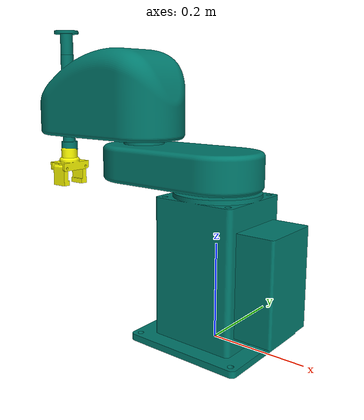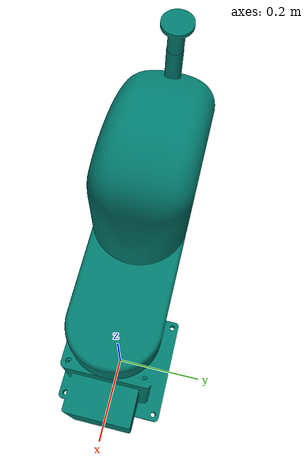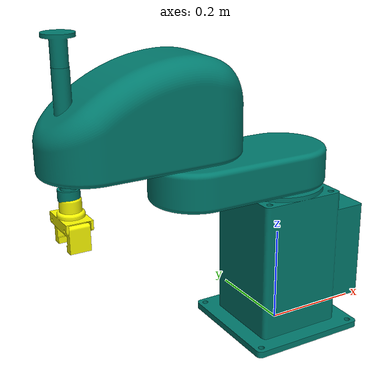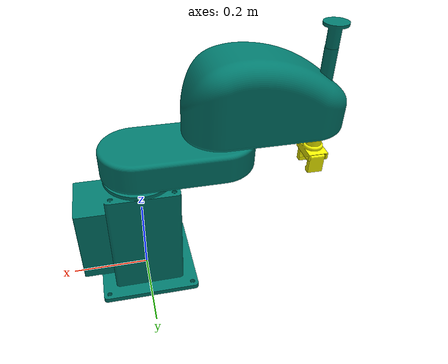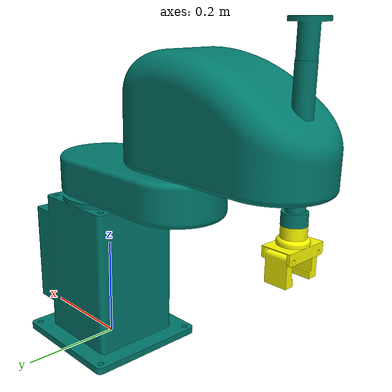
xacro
<?xml version="1.0"?>
<robot xmlns:xacro="http://www.ros.org/wiki/xacro" name="scara">

  <!-- Propriedades e Plugins do Gazebo (Prática IV) -->
  <xacro:arg name="is_sim" default="true"/>
  <xacro:include filename="$(find scara_description)/urdf/scara_gazebo.xacro" />

  <!-- Controles Ativados: -->
  <xacro:include filename="$(find scara_description)/urdf/scara_ros2_control.xacro" />

  <!-- Materiais de Cor -->
  <material name="teal">
    <color rgba="0.0 0.48 0.43 1"/>
  </material>
  <material name="white">
    <color rgba="1 1 1 1"/>
  </material>
  <material name="yellow">
    <color rgba="1 1 0 1"/>
  </material>

  <!-- Variáveis XACRO -->
  <xacro:property name="PI" value="3.14159265359" />
  <xacro:property name="effort" value="30.0" />
  <xacro:property name="velocity" value="1.0" />

  <!-- Macros de Inércia e Transmissão -->
  <xacro:macro name="default_inertial" params="mass">
    <inertial>
      <origin xyz="0 0 0" rpy="0 0 0"/>
      <mass value="${mass}" />
      <inertia ixx="1.0" ixy="0.0" ixz="0.0"
               iyy="1.0" iyz="0.0"
               izz="1.0" />
    </inertial>
  </xacro:macro>

  <xacro:macro name="default_transmission" params="number">
    <transmission name="transmission_${number}">
      <plugin>transmission_interface/SimpleTransmission</plugin>
      <actuator name="motor_${number}" role="actuator1"/>
      <joint name="joint_${number}" role="joint1">
        <mechanical_reduction>1.0</mechanical_reduction>
      </joint>
    </transmission>
  </xacro:macro>

  <link name="world"/>

  <!-- 1. BASE (bs.stl) -->
  <link name="base_link">
    <xacro:default_inertial mass="2.0"/>
    <visual>
      <origin rpy="0 0 0" xyz="0 0 0"/>
      <geometry>
        <mesh filename="package://scara_description/meshes/bs.stl" scale="0.001 0.001 0.001"/>
      </geometry>
      <material name="teal"/>
    </visual>
    <collision>
      <origin rpy="0 0 0" xyz="0 0 0"/>
      <geometry>
        <mesh filename="package://scara_description/meshes/bs.stl" scale="0.001 0.001 0.001"/>
      </geometry>
    </collision>
  </link>

  <joint name="virtual_joint" type="fixed">
    <parent link="world"/>
    <child link="base_link"/>
    <!-- MUDE O VALOR ABAIXO: O "0.1" é o eixo Z.
         Aumente (ex: 0.15) se continuar afundado, ou diminua (ex: 0.05) se flutuar. -->
    <origin xyz="0 0 0.15" rpy="0 0 0"/>
  </joint>

  <!-- 2. ELO 1 (es.stl) -->
  <link name="link_1">
    <xacro:default_inertial mass="0.5"/>
    <visual>
      <origin rpy="0 0 0" xyz="-0.097972 0.002395 -0.026000"/>
      <geometry>
        <mesh filename="package://scara_description/meshes/es.stl" scale="0.001 0.001 0.001"/>
      </geometry>
      <material name="teal"/>
    </visual>
    <collision>
      <origin rpy="0 0 0" xyz="-0.097972 0.002395 -0.026000"/>
      <geometry>
        <mesh filename="package://scara_description/meshes/es.stl" scale="0.001 0.001 0.001"/>
      </geometry>
    </collision>
  </link>

  <joint name="joint_1" type="revolute">
    <parent link="base_link"/>
    <child link="link_1"/>
    <origin xyz="0.000972 -0.002395 0.189000" rpy="0 0 0"/>
    <axis xyz="0 0 1"/>
    <limit lower="-3.14" upper="3.14" effort="10.0" velocity="1.0"/>
  </joint>

  <!-- 3. ELO 2 (as.stl) -->
  <link name="link_2">
    <xacro:default_inertial mass="0.5"/>
    <visual>
      <origin rpy="0 0 0" xyz="-0.105150 -0.004515 0.080000"/>
      <geometry>
        <mesh filename="package://scara_description/meshes/as.stl" scale="0.001 0.001 0.001"/>
      </geometry>
      <material name="teal"/>
    </visual>
    <collision>
      <origin rpy="0 0 0" xyz="-0.105150 -0.004515 0.080000"/>
      <geometry>
        <mesh filename="package://scara_description/meshes/as.stl" scale="0.001 0.001 0.001"/>
      </geometry>
    </collision>
  </link>

  <joint name="joint_2" type="revolute">
    <parent link="link_1"/>
    <child link="link_2"/>
    <origin xyz="-0.198822 0.006910 0.022000" rpy="0 0 0"/>
    <axis xyz="0 0 1"/>
    <limit lower="-2.268" upper="2.268" effort="10.0" velocity="1.0"/>
  </joint>

  <!-- 4. HASTE VERTICAL (cs.stl) -->
  <link name="link_z">
    <xacro:default_inertial mass="0.15"/>
    <visual>
      <origin rpy="0 0 0" xyz="-0.000266 0.002599 -0.157000"/>
      <geometry>
        <mesh filename="package://scara_description/meshes/cs.stl" scale="0.001 0.001 0.001"/>
      </geometry>
      <material name="teal"/>
    </visual>
    <collision>
      <origin rpy="0 0 0" xyz="-0.000266 0.002599 -0.157000"/>
      <geometry>
        <mesh filename="package://scara_description/meshes/cs.stl" scale="0.001 0.001 0.001"/>
      </geometry>
    </collision>
  </link>

  <joint name="joint_z" type="prismatic">
    <parent link="link_2"/>
    <child link="link_z"/>
    <origin xyz="-0.248884 -0.007114 0.286000" rpy="0 0 0"/>
    <axis xyz="0 0 1"/>
    <limit lower="-0.1" upper="0.0" effort="15.0" velocity="0.5"/>
  </joint>

  <!-- 5. BASE DA GARRA (g1.stl) -->
  <link name="gripper_base">
    <xacro:default_inertial mass="0.1"/>
    <visual>
      <origin rpy="0 0 0" xyz="0 0 0"/>
      <geometry>
        <mesh filename="package://scara_description/meshes/g1.stl" scale="0.001 0.001 0.001"/>
      </geometry>
      <material name="yellow"/>
    </visual>
    <collision>
      <origin rpy="0 0 0" xyz="0 0 0"/>
      <geometry>
        <mesh filename="package://scara_description/meshes/g1.stl" scale="0.001 0.001 0.001"/>
      </geometry>
    </collision>
  </link>

  <joint name="joint_gripper_base" type="revolute">
    <parent link="link_z"/>
    <child link="gripper_base"/>
    <origin xyz="0.000464 0.001451 -0.306841" rpy="0 0 0"/>
    <axis xyz="0 0 1"/>
    <limit lower="-3.14" upper="3.14" effort="5.0" velocity="1.0"/>
  </joint>

  <!-- 6. DEDO 1 DA GARRA (g2.stl - Direita) -->
  <link name="finger_1">
    <xacro:default_inertial mass="0.02"/>
    <visual>
      <origin rpy="0 0 0" xyz="0 -0.01984 -0.019"/>
      <geometry>
        <mesh filename="package://scara_description/meshes/g2.stl" scale="0.001 0.001 0.001"/>
      </geometry>
      <material name="yellow"/>
    </visual>
    <collision>
      <origin rpy="0 0 0" xyz="0 -0.01984 -0.019"/>
      <geometry>
        <mesh filename="package://scara_description/meshes/g2.stl" scale="0.001 0.001 0.001"/>
      </geometry>
    </collision>
  </link>

  <joint name="joint_finger_1" type="revolute">
    <parent link="gripper_base"/>
    <child link="finger_1"/>
    <origin xyz="0.02 0.03 -0.023" rpy="0 0 0"/>
    <axis xyz="-1 0 0"/>
    <limit lower="-1.0" upper="1.0" effort="5.0" velocity="0.5"/>
  </joint>

  <!-- 7. DEDO 2 DA GARRA (g3.stl - Esquerda) -->
  <link name="finger_2">
    <xacro:default_inertial mass="0.02"/>
    <visual>
      <origin rpy="0 0 1.5708" xyz="0 0 -0.019"/>
      <geometry>
        <mesh filename="package://scara_description/meshes/g3.stl" scale="0.001 0.001 0.001"/>
      </geometry>
      <material name="yellow"/>
    </visual>
    <collision>
      <origin rpy="0 0 1.5708" xyz="0 0 -0.019"/>
      <geometry>
        <mesh filename="package://scara_description/meshes/g3.stl" scale="0.001 0.001 0.001"/>
      </geometry>
    </collision>
  </link>

  <joint name="joint_finger_2" type="revolute">
    <parent link="gripper_base"/>
    <child link="finger_2"/>
    <origin xyz="0.02 -0.03 -0.023" rpy="0 0 0"/>
    <axis xyz="1 0 0"/>
    <limit lower="-1.0" upper="1.0" effort="5.0" velocity="0.5"/>
  </joint>

  <gazebo reference="base_link">
    <material>Gazebo/Green</material>
  </gazebo>
  <gazebo reference="link_1">
    <material>Gazebo/Green</material>
  </gazebo>
  <gazebo reference="link_2">
    <material>Gazebo/Green</material>
  </gazebo>
  <gazebo reference="link_z">
    <material>Gazebo/Green</material>
  </gazebo>
  <gazebo reference="gripper_base">
    <material>Gazebo/Yellow</material>
  </gazebo>
  <gazebo reference="finger_1">
    <material>Gazebo/Yellow</material>
  </gazebo>
  <gazebo reference="finger_2">
    <material>Gazebo/Yellow</material>
  </gazebo>

</robot>
